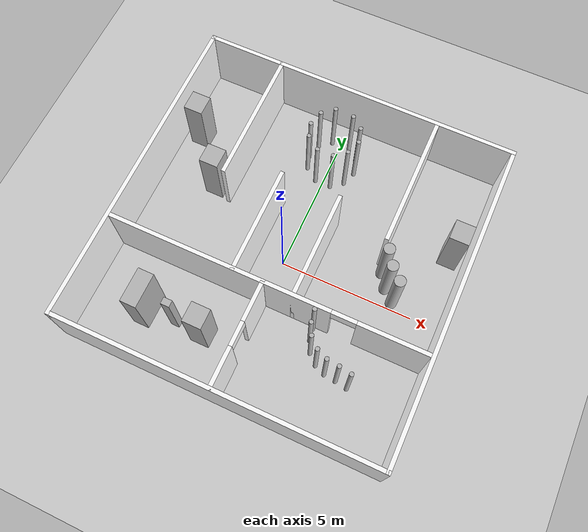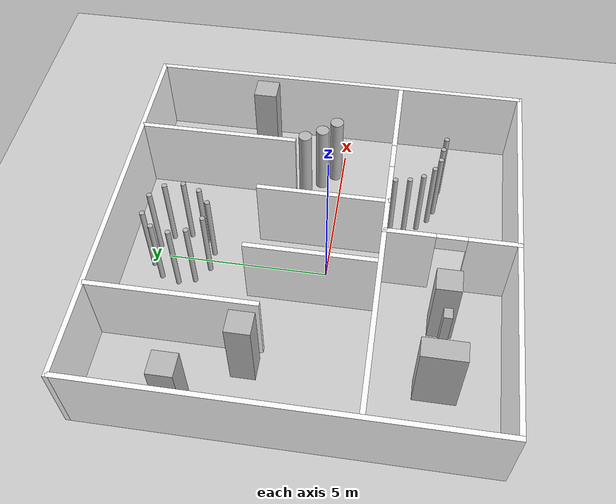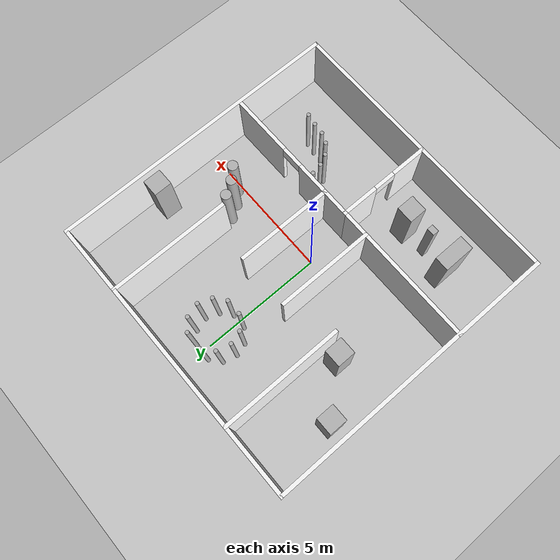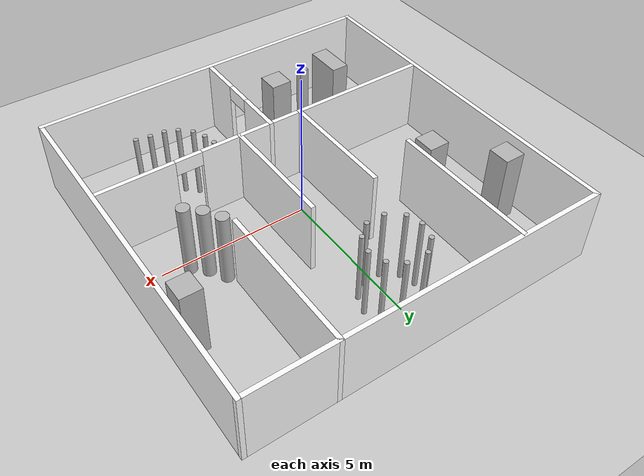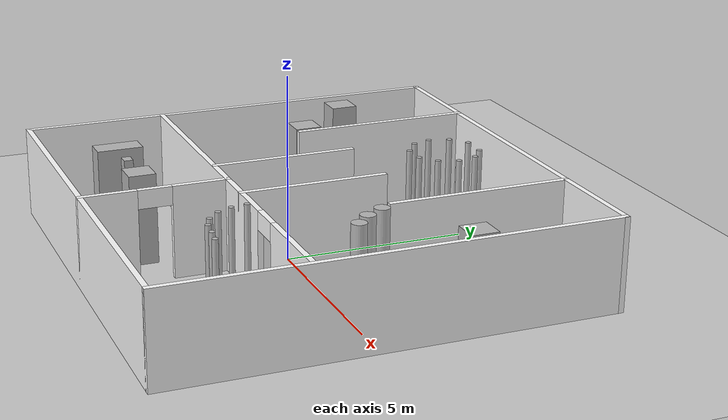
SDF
<sdf version="1.6">
 <world name="default">
  <plugin name="ros_interface_plugin" filename="librotors_gazebo_ros_interface_plugin.so"/>
  <plugin name="ros_rl_interface_plugin" filename="librl_gazebo_interface_plugin.so"/>
  <light name="sun" type="directional">
   <pose>0 0 10 0 -0 0</pose>
   <diffuse>0.8 0.8 0.8 1</diffuse>
   <specular>0.2 0.2 0.2 1</specular>
   <attenuation>
    <range>1000</range>
    <constant>0.9</constant>
    <linear>0.01</linear>
    <quadratic>0.001</quadratic>
   </attenuation>
   <direction>-0.5 0.1 -0.9</direction>
  </light>
  <model name="ground_plane">
   <static>1</static>
   <link name="link">
    <collision name="collision">
     <geometry><plane><normal>0 0 1</normal><size>100 100</size></plane></geometry>
     <surface>
      <contact><collide_bitmask>65535</collide_bitmask></contact>
      <friction><ode><mu>100</mu><mu2>50</mu2></ode></friction>
     </surface>
    </collision>
    <visual name="visual">
     <cast_shadows>0</cast_shadows>
     <geometry><plane><normal>0 0 1</normal><size>100 100</size></plane></geometry>
     <material>
      <script>
       <uri>model://textures/materials/scripts</uri>
       <uri>model://textures/materials/textures/</uri>
       <name>Ground/Image</name>
      </script>
     </material>
    </visual>
   </link>
  </model>
  <gravity>0 0 -9.8</gravity>
  <magnetic_field>6e-06 2.3e-05 -4.2e-05</magnetic_field>
  <atmosphere type="adiabatic"/>
  <physics name="default_physics" default="0" type="ode">
   <max_step_size>0.001</max_step_size>
   <real_time_factor>1</real_time_factor>
   <real_time_update_rate>1000</real_time_update_rate>
  </physics>
  <scene><ambient>0.4 0.4 0.4 1</ambient><background>0.7 0.7 0.7 1</background><shadows>1</shadows></scene>
  <audio><device>default</device></audio>
  <spherical_coordinates>
   <surface_model>EARTH_WGS84</surface_model>
   <latitude_deg>0</latitude_deg>
   <longitude_deg>0</longitude_deg>
   <elevation>0</elevation>
   <heading_deg>0</heading_deg>
  </spherical_coordinates>
  <model name="Lidar_Course">
   <pose>0.131781 0.42331 0 0 -0 0</pose>
   <link name="Wall_0">
    <collision name="Wall_0_Collision">
     <geometry><box><size>12 0.15 2.5</size></box></geometry>
     <pose>0 0 1.25 0 -0 0</pose>
    </collision>
    <visual name="Wall_0_Visual">
     <pose>0 0 1.25 0 -0 0</pose>
     <geometry><box><size>12 0.15 2.5</size></box></geometry>
     <material>
      <script>
       <uri>model://textures/materials/scripts</uri>
       <uri>model://textures/materials/textures/</uri>
       <name>WhiteBricksExterior/Image</name>
      </script>
      <ambient>1 1 1 1</ambient>
     </material>
     <meta><layer>0</layer></meta>
    </visual>
    <pose>-0 -5.925 0 0 -0 0</pose>
   </link>
   <link name="Wall_10">
    <collision name="Wall_10_Collision">
     <geometry><box><size>5 0.15 2.5</size></box></geometry>
     <pose>0 0 1.25 0 -0 0</pose>
    </collision>
    <visual name="Wall_10_Visual">
     <pose>0 0 1.25 0 -0 0</pose>
     <geometry><box><size>5 0.15 2.5</size></box></geometry>
     <material>
      <script>
       <uri>model://textures/materials/scripts</uri>
       <uri>model://textures/materials/textures/</uri>
       <name>WhiteBricks/Image</name>
      </script>
      <ambient>1 1 1 1</ambient>
     </material>
     <meta><layer>0</layer></meta>
    </visual>
    <pose>-3.075 3.5 0 0 -0 -1.5708</pose>
   </link>
   <link name="Wall_13">
    <collision name="Wall_13_Collision">
     <geometry><box><size>5 0.15 2.5</size></box></geometry>
     <pose>0 0 1.25 0 -0 0</pose>
    </collision>
    <visual name="Wall_13_Visual">
     <pose>0 0 1.25 0 -0 0</pose>
     <geometry><box><size>5 0.15 2.5</size></box></geometry>
     <material>
      <script>
       <uri>model://textures/materials/scripts</uri>
       <uri>model://textures/materials/textures/</uri>
       <name>WhiteBricks/Image</name>
      </script>
      <ambient>1 1 1 1</ambient>
     </material>
     <meta><layer>0</layer></meta>
    </visual>
    <pose>3.075 3.5 0 0 -0 -1.5708</pose>
   </link>
   <link name="Wall_3">
    <collision name="Wall_3_Collision">
     <geometry><box><size>12 0.15 2.5</size></box></geometry>
     <pose>0 0 1.25 0 -0 0</pose>
    </collision>
    <visual name="Wall_3_Visual">
     <pose>0 0 1.25 0 -0 0</pose>
     <geometry><box><size>12 0.15 2.5</size></box></geometry>
     <material>
      <script>
       <uri>model://textures/materials/scripts</uri>
       <uri>model://textures/materials/textures/</uri>
       <name>WhiteBricksExterior/Image</name>
      </script>
      <ambient>1 1 1 1</ambient>
     </material>
     <meta><layer>0</layer></meta>
    </visual>
    <pose>5.925 0 0 0 -0 1.5708</pose>
   </link>
   <link name="Wall_30">
    <pose>-0.075 -4 0 0 -0 1.5708</pose>
    <visual name="Wall_30_Visual_0">
     <pose>-1.2292 0 1.25 0 -0 0</pose>
     <geometry><box><size>1.5416 0.15 2.5</size></box></geometry>
     <material>
      <script>
       <uri>model://textures/materials/scripts</uri>
       <uri>model://textures/materials/textures/</uri>
       <name>WhiteBricksThin/Image</name>
      </script>
      <ambient>1 1 1 1</ambient>
     </material>
     <meta><layer>0</layer></meta>
    </visual>
    <collision name="Wall_30_Collision_0">
     <geometry><box><size>1.5416 0.15 2.5</size></box></geometry>
     <pose>-1.2292 0 1.25 0 -0 0</pose>
    </collision>
    <visual name="Wall_30_Visual_1">
     <pose>1.2208 0 1.25 0 -0 0</pose>
     <geometry><box><size>1.5584 0.15 2.5</size></box></geometry>
     <material>
      <script>
       <uri>model://textures/materials/scripts</uri>
       <uri>model://textures/materials/textures/</uri>
       <name>WhiteBricksThin/Image</name>
      </script>
      <ambient>1 1 1 1</ambient>
     </material>
     <meta><layer>0</layer></meta>
    </visual>
    <collision name="Wall_30_Collision_1">
     <geometry><box><size>1.5584 0.15 2.5</size></box></geometry>
     <pose>1.2208 0 1.25 0 -0 0</pose>
    </collision>
    <visual name="Wall_30_Visual_2">
     <pose>-0.0084 0 2.25 0 -0 0</pose>
     <geometry><box><size>0.9 0.15 0.5</size></box></geometry>
     <material>
      <script>
       <uri>model://textures/materials/scripts</uri>
       <uri>model://textures/materials/textures/</uri>
       <name>WhiteBricksSmall/Image</name>
      </script>
      <ambient>1 1 1 1</ambient>
     </material>
     <meta><layer>0</layer></meta>
    </visual>
    <collision name="Wall_30_Collision_2">
     <geometry><box><size>0.9 0.15 0.5</size></box></geometry>
     <pose>-0.0084 0 2.25 0 -0 0</pose>
    </collision>
   </link>
   <link name="Wall_31">
    <collision name="Wall_31_Collision">
     <geometry><box><size>6 0.15 2.5</size></box></geometry>
     <pose>0 0 1.25 0 -0 0</pose>
    </collision>
    <visual name="Wall_31_Visual">
     <pose>0 0 1.25 0 -0 0</pose>
     <geometry><box><size>6 0.15 2.5</size></box></geometry>
     <material>
      <script>
       <uri>model://textures/materials/scripts</uri>
       <uri>model://textures/materials/textures/</uri>
       <name>WhiteBricks/Image</name>
      </script>
      <ambient>1 1 1 1</ambient>
     </material>
     <meta><layer>0</layer></meta>
    </visual>
    <pose>-3 -2.075 0 0 -0 3.14159</pose>
   </link>
   <link name="Wall_33">
    <pose>2.85 -2.075 0 0 -0 0</pose>
    <visual name="Wall_33_Visual_0">
     <pose>-1.72796 0 1.25 0 -0 0</pose>
     <geometry><box><size>2.54407 0.15 2.5</size></box></geometry>
     <material>
      <script>
       <uri>model://textures/materials/scripts</uri>
       <uri>model://textures/materials/textures/</uri>
       <name>WhiteBricks/Image</name>
      </script>
      <ambient>1 1 1 1</ambient>
     </material>
     <meta><layer>0</layer></meta>
    </visual>
    <collision name="Wall_33_Collision_0">
     <geometry><box><size>2.54407 0.15 2.5</size></box></geometry>
     <pose>-1.72796 0 1.25 0 -0 0</pose>
    </collision>
    <visual name="Wall_33_Visual_1">
     <pose>1.72204 0 1.25 0 -0 0</pose>
     <geometry><box><size>2.55593 0.15 2.5</size></box></geometry>
     <material>
      <script>
       <uri>model://textures/materials/scripts</uri>
       <uri>model://textures/materials/textures/</uri>
       <name>WhiteBricks/Image</name>
      </script>
      <ambient>1 1 1 1</ambient>
     </material>
     <meta><layer>0</layer></meta>
    </visual>
    <collision name="Wall_33_Collision_1">
     <geometry><box><size>2.55593 0.15 2.5</size></box></geometry>
     <pose>1.72204 0 1.25 0 -0 0</pose>
    </collision>
    <visual name="Wall_33_Visual_2">
     <pose>-0.005926 0 2.25 0 -0 0</pose>
     <geometry><box><size>0.9 0.15 0.5</size></box></geometry>
     <material>
      <script>
       <uri>model://textures/materials/scripts</uri>
       <uri>model://textures/materials/textures/</uri>
       <name>WhiteBricksSmall/Image</name>
      </script>
      <ambient>1 1 1 1</ambient>
     </material>
     <meta><layer>0</layer></meta>
    </visual>
    <collision name="Wall_33_Collision_2">
     <geometry><box><size>0.9 0.15 0.5</size></box></geometry>
     <pose>-0.005926 0 2.25 0 -0 0</pose>
    </collision>
   </link>
   <link name="Wall_4">
    <collision name="Wall_4_Collision">
     <geometry><box><size>12 0.15 2.5</size></box></geometry>
     <pose>0 0 1.25 0 -0 0</pose>
    </collision>
    <visual name="Wall_4_Visual">
     <pose>0 0 1.25 0 -0 0</pose>
     <geometry><box><size>12 0.15 2.5</size></box></geometry>
     <material>
      <script>
       <uri>model://textures/materials/scripts</uri>
       <uri>model://textures/materials/textures/</uri>
       <name>WhiteBricksExterior/Image</name>
      </script>
      <ambient>1 1 1 1</ambient>
     </material>
     <meta><layer>0</layer></meta>
    </visual>
    <pose>-0 5.925 0 0 -0 3.14159</pose>
   </link>
   <link name="Wall_42">
    <collision name="Wall_42_Collision">
     <geometry><box><size>4 0.15 2.5</size></box></geometry>
     <pose>0 0 1.25 0 -0 0</pose>
    </collision>
    <visual name="Wall_42_Visual">
     <pose>0 0 1.25 0 -0 0</pose>
     <geometry><box><size>4 0.15 2.5</size></box></geometry>
     <material>
      <script>
       <uri>model://textures/materials/scripts</uri>
       <uri>model://textures/materials/textures/</uri>
       <name>WhiteBricks/Image</name>
      </script>
      <ambient>1 1 1 1</ambient>
     </material>
     <meta><layer>0</layer></meta>
    </visual>
    <pose>1.025 -0.15 0 0 -0 1.5708</pose>
   </link>
   <link name="Wall_45">
    <collision name="Wall_45_Collision">
     <geometry><box><size>4 0.15 2.5</size></box></geometry>
     <pose>0 0 1.25 0 -0 0</pose>
    </collision>
    <visual name="Wall_45_Visual">
     <pose>0 0 1.25 0 -0 0</pose>
     <geometry><box><size>4 0.15 2.5</size></box></geometry>
     <material>
      <script>
       <uri>model://textures/materials/scripts</uri>
       <uri>model://textures/materials/textures/</uri>
       <name>WhiteBricks/Image</name>
      </script>
      <ambient>1 1 1 1</ambient>
     </material>
     <meta><layer>0</layer></meta>
    </visual>
    <pose>-1.175 -0.15 0 0 -0 1.5708</pose>
   </link>
   <link name="Wall_6">
    <collision name="Wall_6_Collision">
     <geometry><box><size>12 0.15 2.5</size></box></geometry>
     <pose>0 0 1.25 0 -0 0</pose>
    </collision>
    <visual name="Wall_6_Visual">
     <pose>0 0 1.25 0 -0 0</pose>
     <geometry><box><size>12 0.15 2.5</size></box></geometry>
     <material>
      <script>
       <uri>model://textures/materials/scripts</uri>
       <uri>model://textures/materials/textures/</uri>
       <name>WhiteBricksExterior/Image</name>
      </script>
      <ambient>1 1 1 1</ambient>
     </material>
     <meta><layer>0</layer></meta>
    </visual>
    <pose>-5.925 0 0 0 -0 -1.5708</pose>
   </link>
   <static>1</static>
   <static>1</static>
  </model>
  <model name="unit_cylinder_1">
   <pose>3.42264 1.15097 1.25337 0 -0 0.001341</pose>
   <link name="link">
    <inertial>
     <mass>1</mass>
     <inertia><ixx>0.145833</ixx><ixy>0</ixy><ixz>0</ixz><iyy>0.145833</iyy><iyz>0</iyz><izz>0.125</izz></inertia>
    </inertial>
    <collision name="collision">
     <geometry><cylinder><radius>0.206587</radius><length>2.50675</length></cylinder></geometry>
    </collision>
    <visual name="visual">
     <geometry><cylinder><radius>0.206587</radius><length>2.50675</length></cylinder></geometry>
     <material>
      <script>
       <uri>model://textures/materials/scripts</uri>
       <uri>model://textures/materials/textures/</uri>
       <name>BricksHalf/Image</name>
      </script>
     </material>
    </visual>
   </link>
   <static>1</static>
  </model>
  <model name="unit_cylinder_2">
   <pose>3.74673 0.640295 1.25337 0 -0 0.001194</pose>
   <link name="link">
    <inertial>
     <mass>1</mass>
     <inertia><ixx>0.145833</ixx><ixy>0</ixy><ixz>0</ixz><iyy>0.145833</iyy><iyz>0</iyz><izz>0.125</izz></inertia>
    </inertial>
    <collision name="collision">
     <geometry><cylinder><radius>0.206587</radius><length>2.50675</length></cylinder></geometry>
    </collision>
    <visual name="visual">
     <geometry><cylinder><radius>0.206587</radius><length>2.50675</length></cylinder></geometry>
     <material>
      <script>
       <uri>model://textures/materials/scripts</uri>
       <uri>model://textures/materials/textures/</uri>
       <name>BricksHalf/Image</name>
      </script>
     </material>
    </visual>
   </link>
   <static>1</static>
  </model>
  <model name="unit_cylinder_3">
   <pose>4.16082 0.236836 1.25337 0 -0 0.001094</pose>
   <link name="link">
    <inertial>
     <mass>1</mass>
     <inertia><ixx>0.145833</ixx><ixy>0</ixy><ixz>0</ixz><iyy>0.145833</iyy><iyz>0</iyz><izz>0.125</izz></inertia>
    </inertial>
    <collision name="collision">
     <geometry><cylinder><radius>0.206587</radius><length>2.50675</length></cylinder></geometry>
    </collision>
    <visual name="visual">
     <geometry><cylinder><radius>0.206587</radius><length>2.50675</length></cylinder></geometry>
     <material>
      <script>
       <uri>model://textures/materials/scripts</uri>
       <uri>model://textures/materials/textures/</uri>
       <name>BricksHalf/Image</name>
      </script>
     </material>
    </visual>
   </link>
   <static>1</static>
  </model>
  <model name="unit_box_1">
   <pose>-5.05213 3.54527 1.2312 1e-06 1e-06 -0.000158</pose>
   <link name="link">
    <inertial>
     <mass>1</mass>
     <inertia>
      <ixx>0.166667</ixx>
      <ixy>0</ixy>
      <ixz>0</ixz>
      <iyy>0.166667</iyy>
      <iyz>0</iyz>
      <izz>0.166667</izz>
     </inertia>
    </inertial>
    <collision name="collision"><geometry><box><size>0.701552 0.730852 2.46241</size></box></geometry></collision>
    <visual name="visual">
     <geometry><box><size>0.701552 0.730852 2.46241</size></box></geometry>
     <material>
      <script>
       <uri>model://textures/materials/scripts</uri>
       <uri>model://textures/materials/textures/</uri>
       <name>BricksThin/Image</name>
      </script>
     </material>
    </visual>
   </link>
   <static>1</static>
  </model>
  <model name="unit_cylinder_4">
   <pose>2.26627 -2.64268 1.25337 0 0 -0.039153</pose>
   <link name="link">
    <inertial>
     <mass>1</mass>
     <inertia><ixx>0.145833</ixx><ixy>0</ixy><ixz>0</ixz><iyy>0.145833</iyy><iyz>0</iyz><izz>0.125</izz></inertia>
    </inertial>
    <collision name="collision">
     <geometry><cylinder><radius>0.0780267</radius><length>2.50675</length></cylinder></geometry>
    </collision>
    <visual name="visual">
     <geometry><cylinder><radius>0.0780267</radius><length>2.50675</length></cylinder></geometry>
     <material>
      <script>
       <uri>model://textures/materials/scripts</uri>
       <uri>model://textures/materials/textures/</uri>
       <name>BricksThin/Image</name>
      </script>
     </material>
    </visual>
   </link>
   <static>1</static>
  </model>
  <model name="unit_cylinder_5">
   <pose>3.01122 -3.13361 1.25337 -0 -0 -0.036532</pose>
   <link name="link">
    <inertial>
     <mass>1</mass>
     <inertia><ixx>0.145833</ixx><ixy>0</ixy><ixz>0</ixz><iyy>0.145833</iyy><iyz>0</iyz><izz>0.125</izz></inertia>
    </inertial>
    <collision name="collision">
     <geometry><cylinder><radius>0.0780267</radius><length>2.50675</length></cylinder></geometry>
    </collision>
    <visual name="visual">
     <geometry><cylinder><radius>0.0780267</radius><length>2.50675</length></cylinder></geometry>
     <material>
      <script>
       <uri>model://textures/materials/scripts</uri>
       <uri>model://textures/materials/textures/</uri>
       <name>BricksThin/Image</name>
      </script>
     </material>
    </visual>
   </link>
   <static>1</static>
  </model>
  <model name="unit_cylinder_6">
   <pose>3.46082 -3.18006 1.25337 -0 -0 -0.043121</pose>
   <link name="link">
    <inertial>
     <mass>1</mass>
     <inertia><ixx>0.145833</ixx><ixy>0</ixy><ixz>0</ixz><iyy>0.145833</iyy><iyz>0</iyz><izz>0.125</izz></inertia>
    </inertial>
    <collision name="collision">
     <geometry><cylinder><radius>0.0780267</radius><length>2.50675</length></cylinder></geometry>
    </collision>
    <visual name="visual">
     <geometry><cylinder><radius>0.0780267</radius><length>2.50675</length></cylinder></geometry>
     <material>
      <script>
       <uri>model://textures/materials/scripts</uri>
       <uri>model://textures/materials/textures/</uri>
       <name>BricksThin/Image</name>
      </script>
     </material>
    </visual>
   </link>
   <static>1</static>
  </model>
  <model name="unit_cylinder_7">
   <pose>3.91043 -3.25578 1.25337 0 0 -0.042317</pose>
   <link name="link">
    <inertial>
     <mass>1</mass>
     <inertia><ixx>0.145833</ixx><ixy>0</ixy><ixz>0</ixz><iyy>0.145833</iyy><iyz>0</iyz><izz>0.125</izz></inertia>
    </inertial>
    <collision name="collision">
     <geometry><cylinder><radius>0.0780267</radius><length>2.50675</length></cylinder></geometry>
    </collision>
    <visual name="visual">
     <geometry><cylinder><radius>0.0780267</radius><length>2.50675</length></cylinder></geometry>
     <material>
      <script>
       <uri>model://textures/materials/scripts</uri>
       <uri>model://textures/materials/textures/</uri>
       <name>BricksThin/Image</name>
      </script>
     </material>
    </visual>
   </link>
   <static>1</static>
  </model>
  <model name="unit_cylinder_8">
   <pose>1.99962 -1.80561 1.25337 0 1e-06 -0.037505</pose>
   <link name="link">
    <inertial>
     <mass>1</mass>
     <inertia><ixx>0.145833</ixx><ixy>0</ixy><ixz>0</ixz><iyy>0.145833</iyy><iyz>0</iyz><izz>0.125</izz></inertia>
    </inertial>
    <collision name="collision">
     <geometry><cylinder><radius>0.0780267</radius><length>2.50675</length></cylinder></geometry>
    </collision>
    <visual name="visual">
     <geometry><cylinder><radius>0.0780267</radius><length>2.50675</length></cylinder></geometry>
     <material>
      <script>
       <uri>model://textures/materials/scripts</uri>
       <uri>model://textures/materials/textures/</uri>
       <name>BricksThin/Image</name>
      </script>
     </material>
    </visual>
   </link>
   <static>1</static>
  </model>
  <model name="unit_cylinder_9">
   <pose>2.61183 -2.96447 1.25337 0 0 -0.043433</pose>
   <link name="link">
    <inertial>
     <mass>1</mass>
     <inertia><ixx>0.145833</ixx><ixy>0</ixy><ixz>0</ixz><iyy>0.145833</iyy><iyz>0</iyz><izz>0.125</izz></inertia>
    </inertial>
    <collision name="collision">
     <geometry><cylinder><radius>0.0780267</radius><length>2.50675</length></cylinder></geometry>
    </collision>
    <visual name="visual">
     <geometry><cylinder><radius>0.0780267</radius><length>2.50675</length></cylinder></geometry>
     <material>
      <script>
       <uri>model://textures/materials/scripts</uri>
       <uri>model://textures/materials/textures/</uri>
       <name>BricksThin/Image</name>
      </script>
     </material>
    </visual>
   </link>
   <static>1</static>
  </model>
  <model name="unit_box_3">
   <pose>-3.56392 1.84685 1.2312 -0 -2e-06 0.000103</pose>
   <link name="link">
    <inertial>
     <mass>1</mass>
     <inertia>
      <ixx>0.166667</ixx>
      <ixy>0</ixy>
      <ixz>0</ixz>
      <iyy>0.166667</iyy>
      <iyz>0</iyz>
      <izz>0.166667</izz>
     </inertia>
    </inertial>
    <collision name="collision"><geometry><box><size>0.701552 0.730852 2.46241</size></box></geometry></collision>
    <visual name="visual">
     <geometry><box><size>0.701552 0.730852 2.46241</size></box></geometry>
     <material>
      <script>
       <uri>model://textures/materials/scripts</uri>
       <uri>model://textures/materials/textures/</uri>
       <name>BricksThin/Image</name>
      </script>
     </material>
    </visual>
   </link>
   <static>1</static>
  </model>
  <model name="unit_cylinder_11">
   <pose>-0.356277 5.37328 1.25337 -0 -0 -0.04229</pose>
   <link name="link">
    <inertial>
     <mass>1</mass>
     <inertia><ixx>0.145833</ixx><ixy>0</ixy><ixz>0</ixz><iyy>0.145833</iyy><iyz>0</iyz><izz>0.125</izz></inertia>
    </inertial>
    <collision name="collision">
     <geometry><cylinder><radius>0.0780267</radius><length>2.50675</length></cylinder></geometry>
    </collision>
    <visual name="visual">
     <geometry><cylinder><radius>0.0780267</radius><length>2.50675</length></cylinder></geometry>
     <material>
      <script>
       <uri>model://textures/materials/scripts</uri>
       <uri>model://textures/materials/textures/</uri>
       <name>BricksThin/Image</name>
      </script>
     </material>
    </visual>
   </link>
   <static>1</static>
  </model>
  <model name="unit_cylinder_12">
   <pose>0.34488 5.35078 1.25337 0 0 -0.043671</pose>
   <link name="link">
    <inertial>
     <mass>1</mass>
     <inertia><ixx>0.145833</ixx><ixy>0</ixy><ixz>0</ixz><iyy>0.145833</iyy><iyz>0</iyz><izz>0.125</izz></inertia>
    </inertial>
    <collision name="collision">
     <geometry><cylinder><radius>0.0780267</radius><length>2.50675</length></cylinder></geometry>
    </collision>
    <visual name="visual">
     <geometry><cylinder><radius>0.0780267</radius><length>2.50675</length></cylinder></geometry>
     <material>
      <script>
       <uri>model://textures/materials/scripts</uri>
       <uri>model://textures/materials/textures/</uri>
       <name>BricksThin/Image</name>
      </script>
     </material>
    </visual>
   </link>
   <static>1</static>
  </model>
  <model name="unit_cylinder_13">
   <pose>0.770947 5.00676 1.25337 0 1e-06 -0.043671</pose>
   <link name="link">
    <inertial>
     <mass>1</mass>
     <inertia><ixx>0.145833</ixx><ixy>0</ixy><ixz>0</ixz><iyy>0.145833</iyy><iyz>0</iyz><izz>0.125</izz></inertia>
    </inertial>
    <collision name="collision">
     <geometry><cylinder><radius>0.0780267</radius><length>2.50675</length></cylinder></geometry>
    </collision>
    <visual name="visual">
     <geometry><cylinder><radius>0.0780267</radius><length>2.50675</length></cylinder></geometry>
     <material>
      <script>
       <uri>model://textures/materials/scripts</uri>
       <uri>model://textures/materials/textures/</uri>
       <name>BricksThin/Image</name>
      </script>
     </material>
    </visual>
   </link>
   <static>1</static>
  </model>
  <model name="unit_cylinder_14">
   <pose>0.922275 4.46341 1.25337 0 0 -0.044125</pose>
   <link name="link">
    <inertial>
     <mass>1</mass>
     <inertia><ixx>0.145833</ixx><ixy>0</ixy><ixz>0</ixz><iyy>0.145833</iyy><iyz>0</iyz><izz>0.125</izz></inertia>
    </inertial>
    <collision name="collision">
     <geometry><cylinder><radius>0.0780267</radius><length>2.50675</length></cylinder></geometry>
    </collision>
    <visual name="visual">
     <geometry><cylinder><radius>0.0780267</radius><length>2.50675</length></cylinder></geometry>
     <material>
      <script>
       <uri>model://textures/materials/scripts</uri>
       <uri>model://textures/materials/textures/</uri>
       <name>BricksThin/Image</name>
      </script>
     </material>
    </visual>
   </link>
   <static>1</static>
  </model>
  <model name="unit_cylinder_15">
   <pose>0.733885 3.94157 1.25337 0 0 -0.042871</pose>
   <link name="link">
    <inertial>
     <mass>1</mass>
     <inertia><ixx>0.145833</ixx><ixy>0</ixy><ixz>0</ixz><iyy>0.145833</iyy><iyz>0</iyz><izz>0.125</izz></inertia>
    </inertial>
    <collision name="collision">
     <geometry><cylinder><radius>0.0780267</radius><length>2.50675</length></cylinder></geometry>
    </collision>
    <visual name="visual">
     <geometry><cylinder><radius>0.0780267</radius><length>2.50675</length></cylinder></geometry>
     <material>
      <script>
       <uri>model://textures/materials/scripts</uri>
       <uri>model://textures/materials/textures/</uri>
       <name>BricksThin/Image</name>
      </script>
     </material>
    </visual>
   </link>
   <static>1</static>
  </model>
  <model name="unit_cylinder_16">
   <pose>0.308504 3.59488 1.25337 0 0 -0.04451</pose>
   <link name="link">
    <inertial>
     <mass>1</mass>
     <inertia><ixx>0.145833</ixx><ixy>0</ixy><ixz>0</ixz><iyy>0.145833</iyy><iyz>0</iyz><izz>0.125</izz></inertia>
    </inertial>
    <collision name="collision">
     <geometry><cylinder><radius>0.0780267</radius><length>2.50675</length></cylinder></geometry>
    </collision>
    <visual name="visual">
     <geometry><cylinder><radius>0.0780267</radius><length>2.50675</length></cylinder></geometry>
     <material>
      <script>
       <uri>model://textures/materials/scripts</uri>
       <uri>model://textures/materials/textures/</uri>
       <name>BricksThin/Image</name>
      </script>
     </material>
    </visual>
   </link>
   <static>1</static>
  </model>
  <model name="unit_cylinder_17">
   <pose>-0.296529 3.59714 1.25337 -0 1e-06 -0.040922</pose>
   <link name="link">
    <inertial>
     <mass>1</mass>
     <inertia><ixx>0.145833</ixx><ixy>0</ixy><ixz>0</ixz><iyy>0.145833</iyy><iyz>0</iyz><izz>0.125</izz></inertia>
    </inertial>
    <collision name="collision">
     <geometry><cylinder><radius>0.0780267</radius><length>2.50675</length></cylinder></geometry>
    </collision>
    <visual name="visual">
     <geometry><cylinder><radius>0.0780267</radius><length>2.50675</length></cylinder></geometry>
     <material>
      <script>
       <uri>model://textures/materials/scripts</uri>
       <uri>model://textures/materials/textures/</uri>
       <name>BricksThin/Image</name>
      </script>
     </material>
    </visual>
   </link>
   <static>1</static>
  </model>
  <model name="unit_cylinder_18">
   <pose>-0.787364 3.96671 1.25337 0 0 -0.038375</pose>
   <link name="link">
    <inertial>
     <mass>1</mass>
     <inertia><ixx>0.145833</ixx><ixy>0</ixy><ixz>0</ixz><iyy>0.145833</iyy><iyz>0</iyz><izz>0.125</izz></inertia>
    </inertial>
    <collision name="collision">
     <geometry><cylinder><radius>0.0780267</radius><length>2.50675</length></cylinder></geometry>
    </collision>
    <visual name="visual">
     <geometry><cylinder><radius>0.0780267</radius><length>2.50675</length></cylinder></geometry>
     <material>
      <script>
       <uri>model://textures/materials/scripts</uri>
       <uri>model://textures/materials/textures/</uri>
       <name>BricksThin/Image</name>
      </script>
     </material>
    </visual>
   </link>
   <static>1</static>
  </model>
  <model name="unit_cylinder_19">
   <pose>-0.934341 4.45948 1.25337 -0 1e-06 -0.044561</pose>
   <link name="link">
    <inertial>
     <mass>1</mass>
     <inertia><ixx>0.145833</ixx><ixy>0</ixy><ixz>0</ixz><iyy>0.145833</iyy><iyz>0</iyz><izz>0.125</izz></inertia>
    </inertial>
    <collision name="collision">
     <geometry><cylinder><radius>0.0780267</radius><length>2.50675</length></cylinder></geometry>
    </collision>
    <visual name="visual">
     <geometry><cylinder><radius>0.0780267</radius><length>2.50675</length></cylinder></geometry>
     <material>
      <script>
       <uri>model://textures/materials/scripts</uri>
       <uri>model://textures/materials/textures/</uri>
       <name>BricksThin/Image</name>
      </script>
     </material>
    </visual>
   </link>
   <static>1</static>
  </model>
  <model name="unit_box_4">
   <pose>-1.3982 -3.58343 1.2312 2e-06 1e-06 0.000445</pose>
   <link name="link">
    <inertial>
     <mass>1</mass>
     <inertia>
      <ixx>0.166667</ixx>
      <ixy>0</ixy>
      <ixz>0</ixz>
      <iyy>0.166667</iyy>
      <iyz>0</iyz>
      <izz>0.166667</izz>
     </inertia>
    </inertial>
    <collision name="collision"><geometry><box><size>0.70155 0.730853 2.46241</size></box></geometry></collision>
    <visual name="visual">
     <geometry><box><size>0.70155 0.730853 2.46241</size></box></geometry>
     <material>
      <script>
       <uri>model://textures/materials/scripts</uri>
       <uri>model://textures/materials/textures/</uri>
       <name>BricksThin/Image</name>
      </script>
     </material>
    </visual>
   </link>
   <static>1</static>
  </model>
  <model name="unit_box_5">
   <pose>-3.59311 -3.55943 1.23121 -1e-06 0 0.000393</pose>
   <link name="link">
    <inertial>
     <mass>1</mass>
     <inertia>
      <ixx>0.166667</ixx>
      <ixy>0</ixy>
      <ixz>0</ixz>
      <iyy>0.166667</iyy>
      <iyz>0</iyz>
      <izz>0.166667</izz>
     </inertia>
    </inertial>
    <collision name="collision"><geometry><box><size>0.589428 1.25546 2.46241</size></box></geometry></collision>
    <visual name="visual">
     <geometry><box><size>0.589428 1.25546 2.46241</size></box></geometry>
     <material>
      <script>
       <uri>model://textures/materials/scripts</uri>
       <uri>model://textures/materials/textures/</uri>
       <name>BricksThin/Image</name>
      </script>
     </material>
    </visual>
   </link>
   <static>1</static>
  </model>
  <model name="unit_box_6">
   <pose>-2.47926 -3.59437 1.23121 1e-06 -0 -3e-05</pose>
   <link name="link">
    <inertial>
     <mass>1</mass>
     <inertia>
      <ixx>0.166667</ixx>
      <ixy>0</ixy>
      <ixz>0</ixz>
      <iyy>0.166667</iyy>
      <iyz>0</iyz>
      <izz>0.166667</izz>
     </inertia>
    </inertial>
    <collision name="collision"><geometry><box><size>0.317378 0.246248 2.46241</size></box></geometry></collision>
    <visual name="visual">
     <geometry><box><size>0.317378 0.246248 2.46241</size></box></geometry>
     <material>
      <script>
       <uri>model://textures/materials/scripts</uri>
       <uri>model://textures/materials/textures/</uri>
       <name>BricksThin/Image</name>
      </script>
     </material>
    </visual>
   </link>
   <static>1</static>
  </model>
  <model name="unit_box_3_clone">
   <pose>5.45117 2.73999 1.23121 2e-06 1e-06 0.000149</pose>
   <link name="link">
    <inertial>
     <mass>1</mass>
     <inertia>
      <ixx>0.166667</ixx>
      <ixy>0</ixy>
      <ixz>0</ixz>
      <iyy>0.166667</iyy>
      <iyz>0</iyz>
      <izz>0.166667</izz>
     </inertia>
    </inertial>
    <collision name="collision"><geometry><box><size>0.701552 0.730852 2.46241</size></box></geometry></collision>
    <visual name="visual">
     <geometry><box><size>0.701552 0.730852 2.46241</size></box></geometry>
     <material>
      <script>
       <uri>model://textures/materials/scripts</uri>
       <uri>model://textures/materials/textures/</uri>
       <name>BricksThin/Image</name>
      </script>
     </material>
    </visual>
   </link>
   <static>1</static>
  </model>
  <model name="unit_cylinder_10">
   <pose>-0.785927 5.01134 1.25337 -0 1e-06 -0.044341</pose>
   <link name="link">
    <inertial>
     <mass>1</mass>
     <inertia><ixx>0.145833</ixx><ixy>0</ixy><ixz>0</ixz><iyy>0.145833</iyy><iyz>0</iyz><izz>0.125</izz></inertia>
    </inertial>
    <collision name="collision">
     <geometry><cylinder><radius>0.0780267</radius><length>2.50675</length></cylinder></geometry>
    </collision>
    <visual name="visual">
     <geometry><cylinder><radius>0.0780267</radius><length>2.50675</length></cylinder></geometry>
     <material>
      <script>
       <uri>model://textures/materials/scripts</uri>
       <uri>model://textures/materials/textures/</uri>
       <name>BricksThin/Image</name>
      </script>
     </material>
    </visual>
   </link>
   <static>1</static>
  </model>
  <model name="unit_cylinder_21">
   <pose>2.0747 -2.23999 1.25337 -0 -0 -0.037428</pose>
   <link name="link">
    <inertial>
     <mass>1</mass>
     <inertia><ixx>0.145833</ixx><ixy>0</ixy><ixz>0</ixz><iyy>0.145833</iyy><iyz>0</iyz><izz>0.125</izz></inertia>
    </inertial>
    <collision name="collision">
     <geometry><cylinder><radius>0.0780267</radius><length>2.50675</length></cylinder></geometry>
    </collision>
    <visual name="visual">
     <geometry><cylinder><radius>0.0780267</radius><length>2.50675</length></cylinder></geometry>
     <material>
      <script>
       <uri>model://textures/materials/scripts</uri>
       <uri>model://textures/materials/textures/</uri>
       <name>BricksThin/Image</name>
      </script>
     </material>
    </visual>
   </link>
   <static>1</static>
  </model>
 </world>
</sdf>
